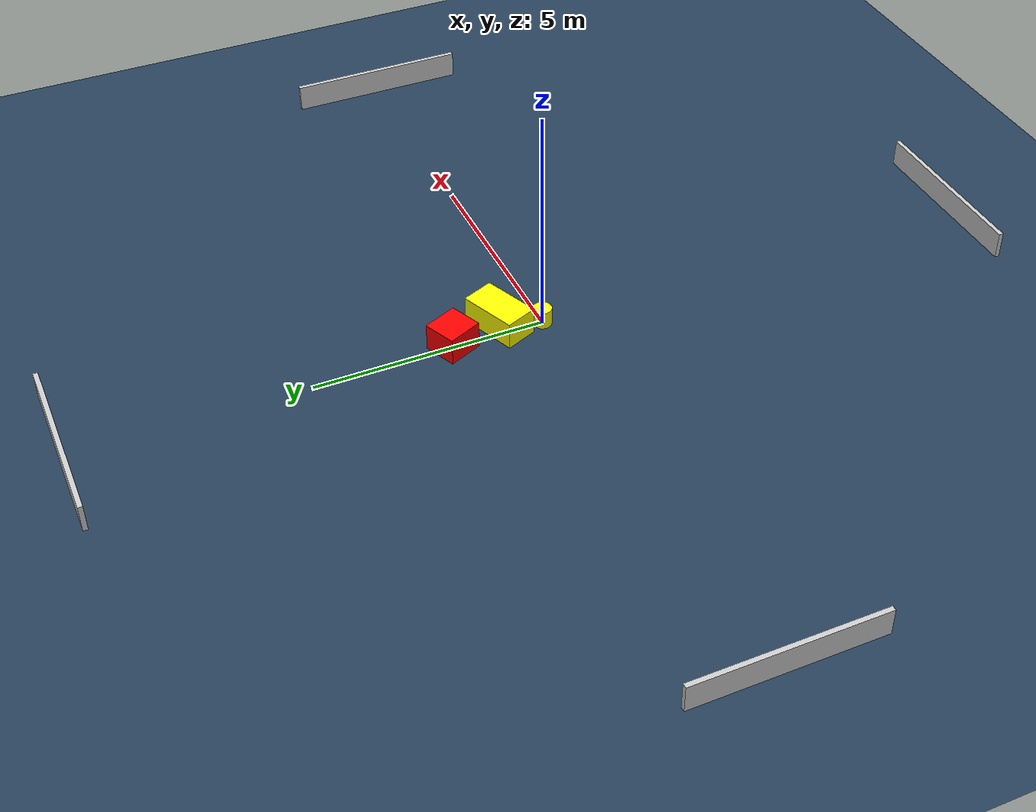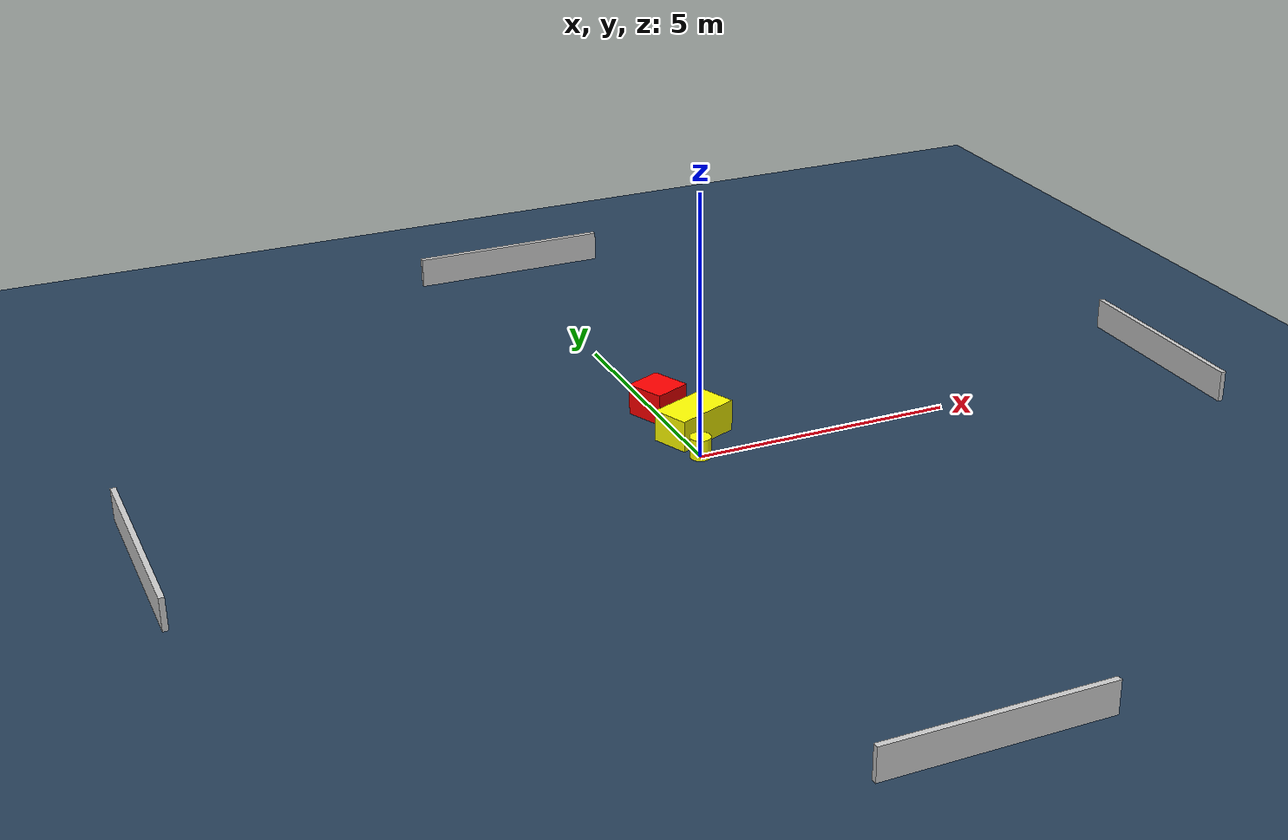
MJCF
<?xml version="1.0" ?>
<mujoco model="generated_environment">
  <option timestep="0.01" integrator="RK4" cone="elliptic"/>
  <default>
    <geom density="1"/>
  </default>
  <asset>
    <texture builtin="gradient" height="3072" name="skybox" rgb1="0.3 0.5 0.7" rgb2="0 0 0" type="skybox" width="512"/>
    <texture builtin="checker" height="300" name="groundplane" rgb1="0.2 0.3 0.4" rgb2="0.1 0.2 0.3" type="2d" width="300"/>
    <material name="groundplane" reflectance="0.2" texrepeat="5 5" texture="groundplane"/>
  </asset>
  <worldbody>
    <light dir="0 0 -1" directional="true" pos="0 0 1.5"/>
    <geom condim="3" friction="0.5 0.005 0.001" material="groundplane" name="floor" pos="0 0 0" size="0 0 0.05" type="plane"/>
    <body name="walls">
      <geom name="wall_1" condim="4" pos="-10.0 0.0 0.3" rgba="0.800000011920929 0.800000011920929 0.800000011920929 1.0" size="0.05 2.0 0.3" type="box"/>
      <geom name="wall_2" condim="4" pos="10.0 0.0 0.3" rgba="0.800000011920929 0.800000011920929 0.800000011920929 1.0" size="0.05 2.0 0.3" type="box"/>
      <geom name="wall_3" condim="4" pos="0.0 -10.0 0.3" rgba="0.800000011920929 0.800000011920929 0.800000011920929 1.0" size="2.0 0.05 0.3" type="box"/>
      <geom name="wall_4" condim="4" pos="0.0 10.0 0.3" rgba="0.800000011920929 0.800000011920929 0.800000011920929 1.0" size="2.0 0.05 0.3" type="box"/>
    </body>
    <body name="robot">
      <joint name="joint_x" type="slide" pos="0 0 0" axis="1 0 0"/>
      <joint name="joint_y" type="slide" pos="0 0 0" axis="0 1 0"/>
      <geom name="robot" type="cylinder" pos="0.0 0.0 0.2" size="0.2 0.2 0.0" mass="5.0" friction="1.0 0.005 0.0001" condim="4" rgba="1.0 1.0 0.0 1.0"/>
    </body>
    <body name="obstacle_1_movable">
      <geom name="obstacle_1_movable" condim="4" pos="0.2615845793525652 0.8565052757384938 0.3" euler="0 0 22.442836765132004" friction="0.0 0.005 0.001" rgba="1.0 1.0 0.0 1.0" size="0.6419315648061648 0.3630296157598326 0.3" type="box" mass="0.1"/>
      <joint type="free"/>
    </body>
    <body name="obstacle_2_static">
      <geom name="obstacle_2_static" condim="4" pos="0.03754932028468526 1.985987057687126 0.3" euler="0 0 293.5184910054206" friction="0.0 0.005 0.001" rgba="1.0 0.0 0.0 1.0" size="0.39031060674649004 0.36882399353831463 0.3" type="box"/>
    </body>
  </worldbody>
  <actuator>
    <motor name="actuator_x" joint="joint_x" gear="1" ctrlrange="-1 1"/>
    <motor name="actuator_y" joint="joint_y" gear="1" ctrlrange="-1 1"/>
  </actuator>
</mujoco>
